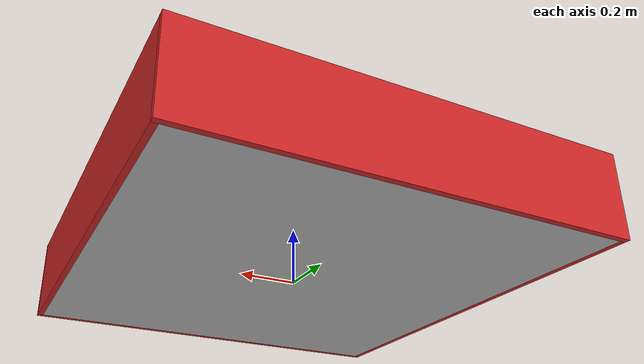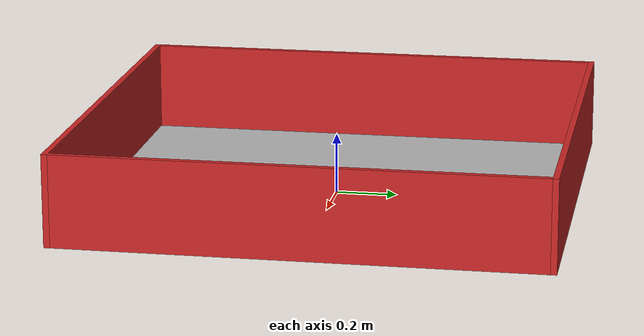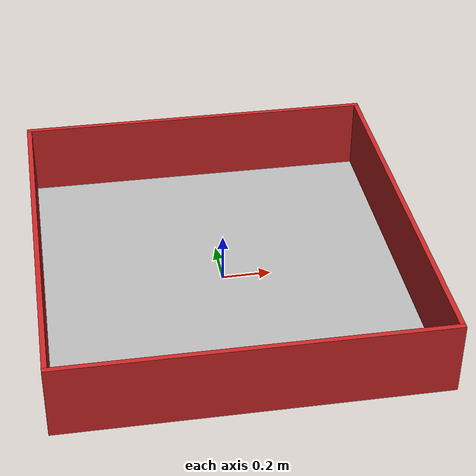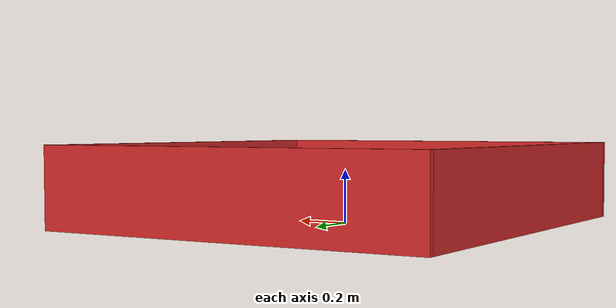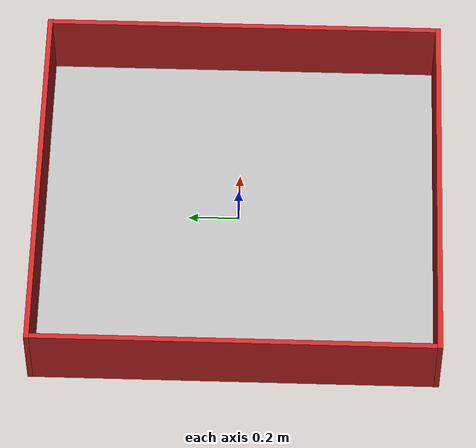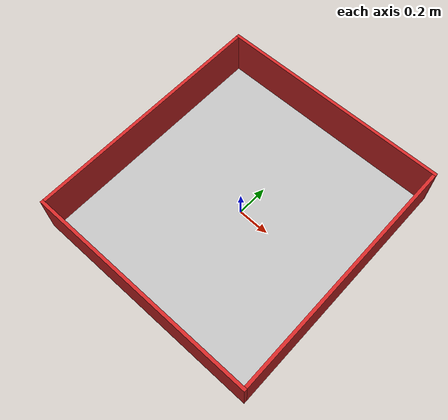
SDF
<?xml version="1.0"?>
<sdf version="1.6">
  <model name="kalman_lab_recinto">
    <static>true</static>
    <link name="link">

      <!-- ── SUELO ─────────────────────────────────────────────── -->
      <collision name="col_suelo">
        <pose>0 0 0.0005 0 0 0</pose>
        <geometry><box><size>1.45 1.55 0.001</size></box></geometry>
      </collision>
      <visual name="vis_suelo">
        <pose>0 0 0.0005 0 0 0</pose>
        <geometry><box><size>1.45 1.55 0.001</size></box></geometry>
        <material><script>
          <uri>model://kalman_lab_recinto/materials/scripts</uri>
          <uri>model://kalman_lab_recinto/materials/textures</uri>
          <name>kalman_lab/Suelo</name>
        </script></material>
      </visual>

      <!-- ── PARED NORTE (Y+) ──────────────────────────────────── -->
      <collision name="col_norte">
        <pose>0 0.785 0.15 0 0 0</pose>
        <geometry><box><size>1.49 0.02 0.30</size></box></geometry>
      </collision>
      <visual name="vis_norte">
        <pose>0 0.785 0.15 0 0 0</pose>
        <geometry><box><size>1.49 0.02 0.30</size></box></geometry>
        <material><script>
          <uri>model://kalman_lab_recinto/materials/scripts</uri>
          <uri>model://kalman_lab_recinto/materials/textures</uri>
          <name>kalman_lab/Pared</name>
        </script></material>
      </visual>

      <!-- ── PARED SUR (Y-) ────────────────────────────────────── -->
      <collision name="col_sur">
        <pose>0 -0.785 0.15 0 0 0</pose>
        <geometry><box><size>1.49 0.02 0.30</size></box></geometry>
      </collision>
      <visual name="vis_sur">
        <pose>0 -0.785 0.15 0 0 0</pose>
        <geometry><box><size>1.49 0.02 0.30</size></box></geometry>
        <material><script>
          <uri>model://kalman_lab_recinto/materials/scripts</uri>
          <uri>model://kalman_lab_recinto/materials/textures</uri>
          <name>kalman_lab/Pared</name>
        </script></material>
      </visual>

      <!-- ── PARED ESTE (X+) ───────────────────────────────────── -->
      <collision name="col_este">
        <pose>0.735 0 0.15 0 0 0</pose>
        <geometry><box><size>0.02 1.55 0.30</size></box></geometry>
      </collision>
      <visual name="vis_este">
        <pose>0.735 0 0.15 0 0 0</pose>
        <geometry><box><size>0.02 1.55 0.30</size></box></geometry>
        <material><script>
          <uri>model://kalman_lab_recinto/materials/scripts</uri>
          <uri>model://kalman_lab_recinto/materials/textures</uri>
          <name>kalman_lab/Pared</name>
        </script></material>
      </visual>

      <!-- ── PARED OESTE (X-) ──────────────────────────────────── -->
      <collision name="col_oeste">
        <pose>-0.735 0 0.15 0 0 0</pose>
        <geometry><box><size>0.02 1.55 0.30</size></box></geometry>
      </collision>
      <visual name="vis_oeste">
        <pose>-0.735 0 0.15 0 0 0</pose>
        <geometry><box><size>0.02 1.55 0.30</size></box></geometry>
        <material><script>
          <uri>model://kalman_lab_recinto/materials/scripts</uri>
          <uri>model://kalman_lab_recinto/materials/textures</uri>
          <name>kalman_lab/Pared</name>
        </script></material>
      </visual>

    </link>
  </model>
</sdf>
